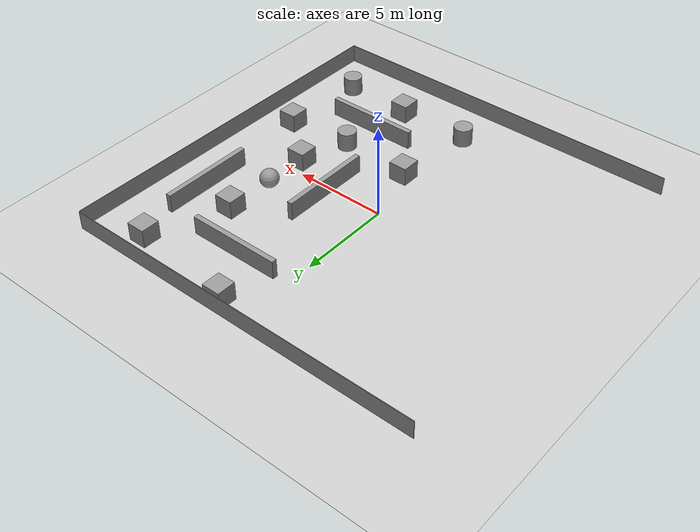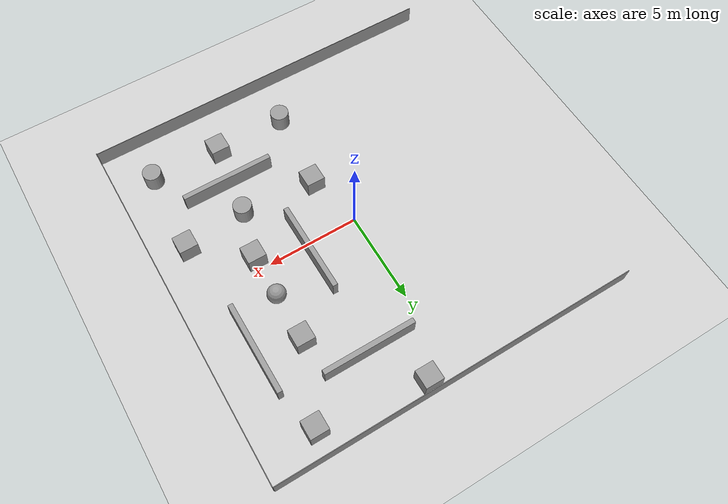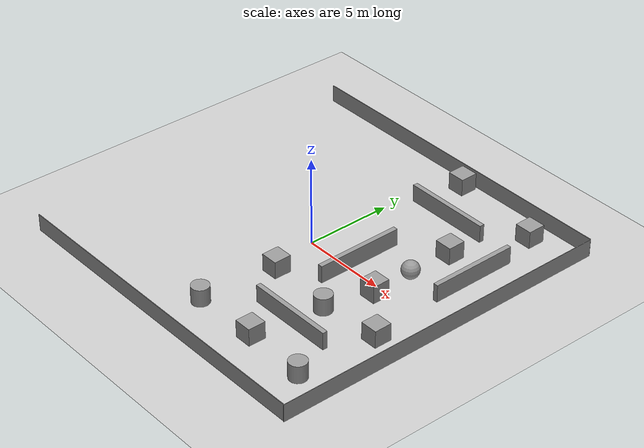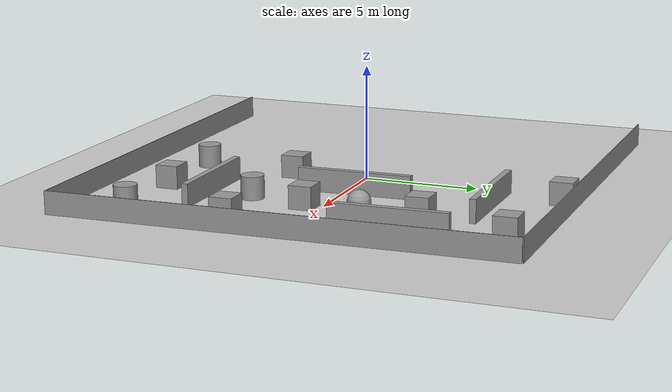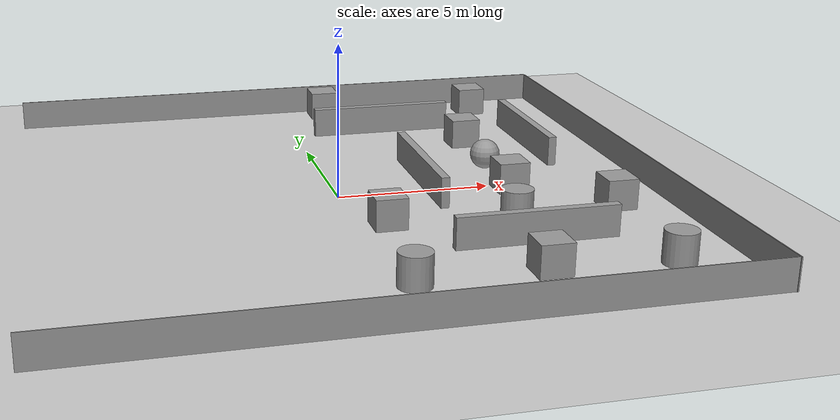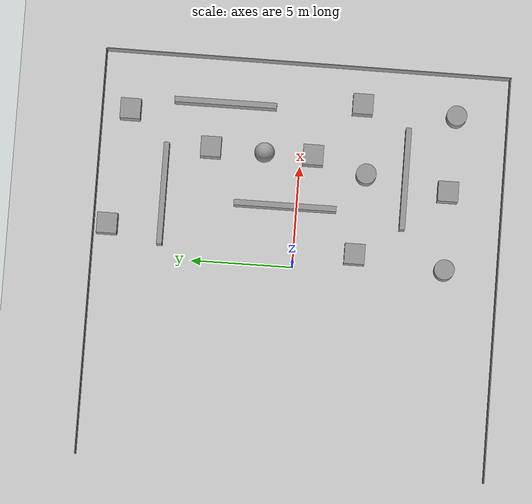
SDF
<sdf version="1.7">
 <world name="default">
  <model name="ground_plane">
   <static>1</static>
   <link name="link">
    <collision name="collision">
     <geometry><plane><normal>0 0 1</normal><size>100 100</size></plane></geometry>
     <surface>
      <contact><collide_bitmask>65535</collide_bitmask></contact>
      <friction><ode><mu>100</mu><mu2>50</mu2></ode></friction>
     </surface>
    </collision>
    <visual name="visual">
     <cast_shadows>0</cast_shadows>
     <geometry><plane><normal>0 0 1</normal><size>100 100</size></plane></geometry>
     <material>
      <script><uri>file://media/materials/scripts/gazebo.material</uri><name>Gazebo/Grey</name></script>
     </material>
    </visual>
   </link>
  </model>
  <model name="m">
   <link name="link_0">
    <inertial>
     <mass>0.665554</mass>
     <inertia><ixx>0.0555244</ixx><ixy>0</ixy><ixz>0</ixz><iyy>22.0844</iyy><iyz>0</iyz><izz>22.029</izz></inertia>
    </inertial>
    <pose>0.242404 -11.0845 -0 0 -0 0</pose>
    <visual name="visual">
     <geometry><box><size>19.9295 0.033323 1</size></box></geometry>
     <material>
      <lighting>1</lighting>
      <script><uri>file://media/materials/scripts/gazebo.material</uri><name>Gazebo/Grey</name></script>
      <shader type="pixel"><normal_map>__default__</normal_map></shader>
     </material>
    </visual>
    <collision name="collision">
     <geometry><box><size>19.9295 0.033323 1</size></box></geometry>
     <surface>
      <friction>
       <ode><mu>1</mu><mu2>1</mu2><fdir1>0 0 0</fdir1><slip1>0</slip1><slip2>0</slip2></ode>
       <torsional>
        <coefficient>1</coefficient>
        <patch_radius>0</patch_radius>
        <surface_radius>0</surface_radius>
        <use_patch_radius>1</use_patch_radius>
        <ode><slip>0</slip></ode>
       </torsional>
      </friction>
      <bounce><restitution_coefficient>0</restitution_coefficient><threshold>1e+06</threshold></bounce>
      <contact>
       <collide_without_contact>0</collide_without_contact>
       <collide_without_contact_bitmask>1</collide_without_contact_bitmask>
       <collide_bitmask>1</collide_bitmask>
       <ode>
        <soft_cfm>0</soft_cfm>
        <soft_erp>0.2</soft_erp>
        <kp>1e+13</kp>
        <kd>1</kd>
        <max_vel>0.01</max_vel>
        <min_depth>0</min_depth>
       </ode>
       <bullet>
        <split_impulse>1</split_impulse>
        <split_impulse_penetration_threshold>-0.01</split_impulse_penetration_threshold>
        <soft_cfm>0</soft_cfm>
        <soft_erp>0.2</soft_erp>
        <kp>1e+13</kp>
        <kd>1</kd>
       </bullet>
      </contact>
     </surface>
    </collision>
   </link>
   <link name="link_0_0">
    <inertial>
     <mass>1</mass>
     <inertia><ixx>0.145833</ixx><ixy>0</ixy><ixz>0</ixz><iyy>0.145833</iyy><iyz>0</iyz><izz>0.125</izz></inertia>
    </inertial>
    <pose>4.95633 -4.33293 -0.032513 -0.004806 1e-06 0</pose>
    <visual name="visual">
     <geometry><cylinder><radius>0.5</radius><length>1</length></cylinder></geometry>
     <material>
      <lighting>1</lighting>
      <script><uri>file://media/materials/scripts/gazebo.material</uri><name>Gazebo/Grey</name></script>
      <shader type="pixel"/>
     </material>
    </visual>
    <collision name="collision">
     <geometry><cylinder><radius>0.5</radius><length>1</length></cylinder></geometry>
     <surface>
      <friction>
       <ode><mu>1</mu><mu2>1</mu2><fdir1>0 0 0</fdir1><slip1>0</slip1><slip2>0</slip2></ode>
       <torsional>
        <coefficient>1</coefficient>
        <patch_radius>0</patch_radius>
        <surface_radius>0</surface_radius>
        <use_patch_radius>1</use_patch_radius>
        <ode><slip>0</slip></ode>
       </torsional>
      </friction>
      <bounce><restitution_coefficient>0</restitution_coefficient><threshold>1e+06</threshold></bounce>
      <contact>
       <collide_without_contact>0</collide_without_contact>
       <collide_without_contact_bitmask>1</collide_without_contact_bitmask>
       <collide_bitmask>1</collide_bitmask>
       <ode>
        <soft_cfm>0</soft_cfm>
        <soft_erp>0.2</soft_erp>
        <kp>1e+13</kp>
        <kd>1</kd>
        <max_vel>0.01</max_vel>
        <min_depth>0</min_depth>
       </ode>
       <bullet>
        <split_impulse>1</split_impulse>
        <split_impulse_penetration_threshold>-0.01</split_impulse_penetration_threshold>
        <soft_cfm>0</soft_cfm>
        <soft_erp>0.2</soft_erp>
        <kp>1e+13</kp>
        <kd>1</kd>
       </bullet>
      </contact>
     </surface>
    </collision>
   </link>
   <link name="link_0_clone">
    <inertial>
     <mass>0.665554</mass>
     <inertia><ixx>0.0555244</ixx><ixy>0</ixy><ixz>0</ixz><iyy>22.0844</iyy><iyz>0</iyz><izz>22.029</izz></inertia>
    </inertial>
    <pose>0.261289 8.83473 0 0 -0 0</pose>
    <visual name="visual">
     <geometry><box><size>19.9295 0.033323 1</size></box></geometry>
     <material>
      <lighting>1</lighting>
      <script><uri>file://media/materials/scripts/gazebo.material</uri><name>Gazebo/Grey</name></script>
      <shader type="pixel"><normal_map>__default__</normal_map></shader>
     </material>
    </visual>
    <collision name="collision">
     <geometry><box><size>19.9295 0.033323 1</size></box></geometry>
     <surface>
      <friction>
       <ode><mu>1</mu><mu2>1</mu2><fdir1>0 0 0</fdir1><slip1>0</slip1><slip2>0</slip2></ode>
       <torsional>
        <coefficient>1</coefficient>
        <patch_radius>0</patch_radius>
        <surface_radius>0</surface_radius>
        <use_patch_radius>1</use_patch_radius>
        <ode><slip>0</slip></ode>
       </torsional>
      </friction>
      <bounce><restitution_coefficient>0</restitution_coefficient><threshold>1e+06</threshold></bounce>
      <contact>
       <collide_without_contact>0</collide_without_contact>
       <collide_without_contact_bitmask>1</collide_without_contact_bitmask>
       <collide_bitmask>1</collide_bitmask>
       <ode>
        <soft_cfm>0</soft_cfm>
        <soft_erp>0.2</soft_erp>
        <kp>1e+13</kp>
        <kd>1</kd>
        <max_vel>0.01</max_vel>
        <min_depth>0</min_depth>
       </ode>
       <bullet>
        <split_impulse>1</split_impulse>
        <split_impulse_penetration_threshold>-0.01</split_impulse_penetration_threshold>
        <soft_cfm>0</soft_cfm>
        <soft_erp>0.2</soft_erp>
        <kp>1e+13</kp>
        <kd>1</kd>
       </bullet>
      </contact>
     </surface>
    </collision>
   </link>
   <link name="link_0_clone_0">
    <inertial>
     <mass>0.665554</mass>
     <inertia><ixx>0.0555244</ixx><ixy>0</ixy><ixz>0</ixz><iyy>22.0844</iyy><iyz>0</iyz><izz>22.029</izz></inertia>
    </inertial>
    <pose>10.2239 -1.16779 0 0 -0 -1.57281</pose>
    <visual name="visual">
     <geometry><box><size>19.9295 0.033323 1</size></box></geometry>
     <material>
      <lighting>1</lighting>
      <script><uri>file://media/materials/scripts/gazebo.material</uri><name>Gazebo/Grey</name></script>
      <shader type="pixel"><normal_map>__default__</normal_map></shader>
     </material>
    </visual>
    <collision name="collision">
     <geometry><box><size>19.9295 0.033323 1</size></box></geometry>
     <surface>
      <friction>
       <ode><mu>1</mu><mu2>1</mu2><fdir1>0 0 0</fdir1><slip1>0</slip1><slip2>0</slip2></ode>
       <torsional>
        <coefficient>1</coefficient>
        <patch_radius>0</patch_radius>
        <surface_radius>0</surface_radius>
        <use_patch_radius>1</use_patch_radius>
        <ode><slip>0</slip></ode>
       </torsional>
      </friction>
      <bounce><restitution_coefficient>0</restitution_coefficient><threshold>1e+06</threshold></bounce>
      <contact>
       <collide_without_contact>0</collide_without_contact>
       <collide_without_contact_bitmask>1</collide_without_contact_bitmask>
       <collide_bitmask>1</collide_bitmask>
       <ode>
        <soft_cfm>0</soft_cfm>
        <soft_erp>0.2</soft_erp>
        <kp>1e+13</kp>
        <kd>1</kd>
        <max_vel>0.01</max_vel>
        <min_depth>0</min_depth>
       </ode>
       <bullet>
        <split_impulse>1</split_impulse>
        <split_impulse_penetration_threshold>-0.01</split_impulse_penetration_threshold>
        <soft_cfm>0</soft_cfm>
        <soft_erp>0.2</soft_erp>
        <kp>1e+13</kp>
        <kd>1</kd>
       </bullet>
      </contact>
     </surface>
    </collision>
   </link>
   <link name="link_1">
    <inertial>
     <mass>1.36399</mass>
     <inertia><ixx>0.122135</ixx><ixy>0</ixy><ixz>0</ixz><iyy>2.98899</iyy><iyz>0</iyz><izz>2.88379</izz></inertia>
    </inertial>
    <pose>3.29192 5.53358 0 0 -0 0</pose>
    <visual name="visual">
     <geometry><box><size>5.02953 0.272957 1</size></box></geometry>
     <material>
      <lighting>1</lighting>
      <script><uri>file://media/materials/scripts/gazebo.material</uri><name>Gazebo/Grey</name></script>
      <shader type="pixel"/>
     </material>
    </visual>
    <collision name="collision">
     <geometry><box><size>5.02953 0.272957 1</size></box></geometry>
     <surface>
      <friction>
       <ode><mu>1</mu><mu2>1</mu2><fdir1>0 0 0</fdir1><slip1>0</slip1><slip2>0</slip2></ode>
       <torsional>
        <coefficient>1</coefficient>
        <patch_radius>0</patch_radius>
        <surface_radius>0</surface_radius>
        <use_patch_radius>1</use_patch_radius>
        <ode><slip>0</slip></ode>
       </torsional>
      </friction>
      <bounce><restitution_coefficient>0</restitution_coefficient><threshold>1e+06</threshold></bounce>
      <contact>
       <collide_without_contact>0</collide_without_contact>
       <collide_without_contact_bitmask>1</collide_without_contact_bitmask>
       <collide_bitmask>1</collide_bitmask>
       <ode>
        <soft_cfm>0</soft_cfm>
        <soft_erp>0.2</soft_erp>
        <kp>1e+13</kp>
        <kd>1</kd>
        <max_vel>0.01</max_vel>
        <min_depth>0</min_depth>
       </ode>
       <bullet>
        <split_impulse>1</split_impulse>
        <split_impulse_penetration_threshold>-0.01</split_impulse_penetration_threshold>
        <soft_cfm>0</soft_cfm>
        <soft_erp>0.2</soft_erp>
        <kp>1e+13</kp>
        <kd>1</kd>
       </bullet>
      </contact>
     </surface>
    </collision>
   </link>
   <link name="link_10">
    <inertial>
     <mass>1</mass>
     <inertia>
      <ixx>0.166667</ixx>
      <ixy>0</ixy>
      <ixz>0</ixz>
      <iyy>0.166667</iyy>
      <iyz>0</iyz>
      <izz>0.166667</izz>
     </inertia>
    </inertial>
    <pose>8.39276 -3.93798 0 0 -0 0</pose>
    <visual name="visual">
     <geometry><box><size>1 1 1</size></box></geometry>
     <material>
      <lighting>1</lighting>
      <script><uri>file://media/materials/scripts/gazebo.material</uri><name>Gazebo/Grey</name></script>
      <shader type="pixel"/>
     </material>
    </visual>
    <collision name="collision">
     <geometry><box><size>1 1 1</size></box></geometry>
     <surface>
      <friction>
       <ode><mu>1</mu><mu2>1</mu2><fdir1>0 0 0</fdir1><slip1>0</slip1><slip2>0</slip2></ode>
       <torsional>
        <coefficient>1</coefficient>
        <patch_radius>0</patch_radius>
        <surface_radius>0</surface_radius>
        <use_patch_radius>1</use_patch_radius>
        <ode><slip>0</slip></ode>
       </torsional>
      </friction>
      <bounce><restitution_coefficient>0</restitution_coefficient><threshold>1e+06</threshold></bounce>
      <contact>
       <collide_without_contact>0</collide_without_contact>
       <collide_without_contact_bitmask>1</collide_without_contact_bitmask>
       <collide_bitmask>1</collide_bitmask>
       <ode>
        <soft_cfm>0</soft_cfm>
        <soft_erp>0.2</soft_erp>
        <kp>1e+13</kp>
        <kd>1</kd>
        <max_vel>0.01</max_vel>
        <min_depth>0</min_depth>
       </ode>
       <bullet>
        <split_impulse>1</split_impulse>
        <split_impulse_penetration_threshold>-0.01</split_impulse_penetration_threshold>
        <soft_cfm>0</soft_cfm>
        <soft_erp>0.2</soft_erp>
        <kp>1e+13</kp>
        <kd>1</kd>
       </bullet>
      </contact>
     </surface>
    </collision>
   </link>
   <link name="link_11">
    <inertial>
     <mass>1</mass>
     <inertia>
      <ixx>0.166667</ixx>
      <ixy>0</ixy>
      <ixz>0</ixz>
      <iyy>0.166667</iyy>
      <iyz>0</iyz>
      <izz>0.166667</izz>
     </inertia>
    </inertial>
    <pose>4.38557 -8.39759 0 0 -0 0</pose>
    <visual name="visual">
     <geometry><box><size>1 1 1</size></box></geometry>
     <material>
      <lighting>1</lighting>
      <script><uri>file://media/materials/scripts/gazebo.material</uri><name>Gazebo/Grey</name></script>
      <shader type="pixel"/>
     </material>
    </visual>
    <collision name="collision">
     <geometry><box><size>1 1 1</size></box></geometry>
     <surface>
      <friction>
       <ode><mu>1</mu><mu2>1</mu2><fdir1>0 0 0</fdir1><slip1>0</slip1><slip2>0</slip2></ode>
       <torsional>
        <coefficient>1</coefficient>
        <patch_radius>0</patch_radius>
        <surface_radius>0</surface_radius>
        <use_patch_radius>1</use_patch_radius>
        <ode><slip>0</slip></ode>
       </torsional>
      </friction>
      <bounce><restitution_coefficient>0</restitution_coefficient><threshold>1e+06</threshold></bounce>
      <contact>
       <collide_without_contact>0</collide_without_contact>
       <collide_without_contact_bitmask>1</collide_without_contact_bitmask>
       <collide_bitmask>1</collide_bitmask>
       <ode>
        <soft_cfm>0</soft_cfm>
        <soft_erp>0.2</soft_erp>
        <kp>1e+13</kp>
        <kd>1</kd>
        <max_vel>0.01</max_vel>
        <min_depth>0</min_depth>
       </ode>
       <bullet>
        <split_impulse>1</split_impulse>
        <split_impulse_penetration_threshold>-0.01</split_impulse_penetration_threshold>
        <soft_cfm>0</soft_cfm>
        <soft_erp>0.2</soft_erp>
        <kp>1e+13</kp>
        <kd>1</kd>
       </bullet>
      </contact>
     </surface>
    </collision>
   </link>
   <link name="link_12">
    <inertial>
     <mass>1</mass>
     <inertia>
      <ixx>0.166667</ixx>
      <ixy>0</ixy>
      <ixz>0</ixz>
      <iyy>0.166667</iyy>
      <iyz>0</iyz>
      <izz>0.166667</izz>
     </inertia>
    </inertial>
    <pose>0.990011 -4.03824 0 0 -0 0</pose>
    <visual name="visual">
     <geometry><box><size>1 1 1</size></box></geometry>
     <material>
      <lighting>1</lighting>
      <script><uri>file://media/materials/scripts/gazebo.material</uri><name>Gazebo/Grey</name></script>
      <shader type="pixel"/>
     </material>
    </visual>
    <collision name="collision">
     <geometry><box><size>1 1 1</size></box></geometry>
     <surface>
      <friction>
       <ode><mu>1</mu><mu2>1</mu2><fdir1>0 0 0</fdir1><slip1>0</slip1><slip2>0</slip2></ode>
       <torsional>
        <coefficient>1</coefficient>
        <patch_radius>0</patch_radius>
        <surface_radius>0</surface_radius>
        <use_patch_radius>1</use_patch_radius>
        <ode><slip>0</slip></ode>
       </torsional>
      </friction>
      <bounce><restitution_coefficient>0</restitution_coefficient><threshold>1e+06</threshold></bounce>
      <contact>
       <collide_without_contact>0</collide_without_contact>
       <collide_without_contact_bitmask>1</collide_without_contact_bitmask>
       <collide_bitmask>1</collide_bitmask>
       <ode>
        <soft_cfm>0</soft_cfm>
        <soft_erp>0.2</soft_erp>
        <kp>1e+13</kp>
        <kd>1</kd>
        <max_vel>0.01</max_vel>
        <min_depth>0</min_depth>
       </ode>
       <bullet>
        <split_impulse>1</split_impulse>
        <split_impulse_penetration_threshold>-0.01</split_impulse_penetration_threshold>
        <soft_cfm>0</soft_cfm>
        <soft_erp>0.2</soft_erp>
        <kp>1e+13</kp>
        <kd>1</kd>
       </bullet>
      </contact>
     </surface>
    </collision>
   </link>
   <link name="link_1_0">
    <inertial>
     <mass>1</mass>
     <inertia><ixx>0.145833</ixx><ixy>0</ixy><ixz>0</ixz><iyy>0.145833</iyy><iyz>0</iyz><izz>0.125</izz></inertia>
    </inertial>
    <pose>0.527383 -8.46897 -0.01263 -0.004806 1e-06 0</pose>
    <visual name="visual">
     <geometry><cylinder><radius>0.5</radius><length>1</length></cylinder></geometry>
     <material>
      <lighting>1</lighting>
      <script><uri>file://media/materials/scripts/gazebo.material</uri><name>Gazebo/Grey</name></script>
      <shader type="pixel"/>
     </material>
    </visual>
    <collision name="collision">
     <geometry><cylinder><radius>0.5</radius><length>1</length></cylinder></geometry>
     <surface>
      <friction>
       <ode><mu>1</mu><mu2>1</mu2><fdir1>0 0 0</fdir1><slip1>0</slip1><slip2>0</slip2></ode>
       <torsional>
        <coefficient>1</coefficient>
        <patch_radius>0</patch_radius>
        <surface_radius>0</surface_radius>
        <use_patch_radius>1</use_patch_radius>
        <ode><slip>0</slip></ode>
       </torsional>
      </friction>
      <bounce><restitution_coefficient>0</restitution_coefficient><threshold>1e+06</threshold></bounce>
      <contact>
       <collide_without_contact>0</collide_without_contact>
       <collide_without_contact_bitmask>1</collide_without_contact_bitmask>
       <collide_bitmask>1</collide_bitmask>
       <ode>
        <soft_cfm>0</soft_cfm>
        <soft_erp>0.2</soft_erp>
        <kp>1e+13</kp>
        <kd>1</kd>
        <max_vel>0.01</max_vel>
        <min_depth>0</min_depth>
       </ode>
       <bullet>
        <split_impulse>1</split_impulse>
        <split_impulse_penetration_threshold>-0.01</split_impulse_penetration_threshold>
        <soft_cfm>0</soft_cfm>
        <soft_erp>0.2</soft_erp>
        <kp>1e+13</kp>
        <kd>1</kd>
       </bullet>
      </contact>
     </surface>
    </collision>
   </link>
   <link name="link_1_1">
    <inertial>
     <mass>1</mass>
     <inertia><ixx>0.145833</ixx><ixy>0</ixy><ixz>0</ixz><iyy>0.145833</iyy><iyz>0</iyz><izz>0.125</izz></inertia>
    </inertial>
    <pose>8.14518 -8.57158 -0.02118 -0.00838 0 0</pose>
    <visual name="visual">
     <geometry><cylinder><radius>0.5</radius><length>1</length></cylinder></geometry>
     <material>
      <lighting>1</lighting>
      <script><uri>file://media/materials/scripts/gazebo.material</uri><name>Gazebo/Grey</name></script>
      <shader type="pixel"/>
     </material>
    </visual>
    <collision name="collision">
     <geometry><cylinder><radius>0.5</radius><length>1</length></cylinder></geometry>
     <surface>
      <friction>
       <ode><mu>1</mu><mu2>1</mu2><fdir1>0 0 0</fdir1><slip1>0</slip1><slip2>0</slip2></ode>
       <torsional>
        <coefficient>1</coefficient>
        <patch_radius>0</patch_radius>
        <surface_radius>0</surface_radius>
        <use_patch_radius>1</use_patch_radius>
        <ode><slip>0</slip></ode>
       </torsional>
      </friction>
      <bounce><restitution_coefficient>0</restitution_coefficient><threshold>1e+06</threshold></bounce>
      <contact>
       <collide_without_contact>0</collide_without_contact>
       <collide_without_contact_bitmask>1</collide_without_contact_bitmask>
       <collide_bitmask>1</collide_bitmask>
       <ode>
        <soft_cfm>0</soft_cfm>
        <soft_erp>0.2</soft_erp>
        <kp>1e+13</kp>
        <kd>1</kd>
        <max_vel>0.01</max_vel>
        <min_depth>0</min_depth>
       </ode>
       <bullet>
        <split_impulse>1</split_impulse>
        <split_impulse_penetration_threshold>-0.01</split_impulse_penetration_threshold>
        <soft_cfm>0</soft_cfm>
        <soft_erp>0.2</soft_erp>
        <kp>1e+13</kp>
        <kd>1</kd>
       </bullet>
      </contact>
     </surface>
    </collision>
   </link>
   <link name="link_1_clone_0">
    <inertial>
     <mass>1.36399</mass>
     <inertia><ixx>0.122135</ixx><ixy>0</ixy><ixz>0</ixz><iyy>2.98899</iyy><iyz>0</iyz><izz>2.88379</izz></inertia>
    </inertial>
    <pose>4.85556 -6.26718 0 0 -0 0</pose>
    <visual name="visual">
     <geometry><box><size>5.02953 0.272957 1</size></box></geometry>
     <material>
      <lighting>1</lighting>
      <script><uri>file://media/materials/scripts/gazebo.material</uri><name>Gazebo/Grey</name></script>
      <shader type="pixel"/>
     </material>
    </visual>
    <collision name="collision">
     <geometry><box><size>5.02953 0.272957 1</size></box></geometry>
     <surface>
      <friction>
       <ode><mu>1</mu><mu2>1</mu2><fdir1>0 0 0</fdir1><slip1>0</slip1><slip2>0</slip2></ode>
       <torsional>
        <coefficient>1</coefficient>
        <patch_radius>0</patch_radius>
        <surface_radius>0</surface_radius>
        <use_patch_radius>1</use_patch_radius>
        <ode><slip>0</slip></ode>
       </torsional>
      </friction>
      <bounce><restitution_coefficient>0</restitution_coefficient><threshold>1e+06</threshold></bounce>
      <contact>
       <collide_without_contact>0</collide_without_contact>
       <collide_without_contact_bitmask>1</collide_without_contact_bitmask>
       <collide_bitmask>1</collide_bitmask>
       <ode>
        <soft_cfm>0</soft_cfm>
        <soft_erp>0.2</soft_erp>
        <kp>1e+13</kp>
        <kd>1</kd>
        <max_vel>0.01</max_vel>
        <min_depth>0</min_depth>
       </ode>
       <bullet>
        <split_impulse>1</split_impulse>
        <split_impulse_penetration_threshold>-0.01</split_impulse_penetration_threshold>
        <soft_cfm>0</soft_cfm>
        <soft_erp>0.2</soft_erp>
        <kp>1e+13</kp>
        <kd>1</kd>
       </bullet>
      </contact>
     </surface>
    </collision>
   </link>
   <link name="link_1_clone_0_clone">
    <inertial>
     <mass>1.36399</mass>
     <inertia><ixx>0.122135</ixx><ixy>0</ixy><ixz>0</ixz><iyy>2.98899</iyy><iyz>0</iyz><izz>2.88379</izz></inertia>
    </inertial>
    <pose>3.10842 -0.473938 -0 0 -0 1.57366</pose>
    <visual name="visual">
     <geometry><box><size>5.02953 0.272957 1</size></box></geometry>
     <material>
      <lighting>1</lighting>
      <script><uri>file://media/materials/scripts/gazebo.material</uri><name>Gazebo/Grey</name></script>
      <shader type="pixel"/>
     </material>
    </visual>
    <collision name="collision">
     <geometry><box><size>5.02953 0.272957 1</size></box></geometry>
     <surface>
      <friction>
       <ode><mu>1</mu><mu2>1</mu2><fdir1>0 0 0</fdir1><slip1>0</slip1><slip2>0</slip2></ode>
       <torsional>
        <coefficient>1</coefficient>
        <patch_radius>0</patch_radius>
        <surface_radius>0</surface_radius>
        <use_patch_radius>1</use_patch_radius>
        <ode><slip>0</slip></ode>
       </torsional>
      </friction>
      <bounce><restitution_coefficient>0</restitution_coefficient><threshold>1e+06</threshold></bounce>
      <contact>
       <collide_without_contact>0</collide_without_contact>
       <collide_without_contact_bitmask>1</collide_without_contact_bitmask>
       <collide_bitmask>1</collide_bitmask>
       <ode>
        <soft_cfm>0</soft_cfm>
        <soft_erp>0.2</soft_erp>
        <kp>1e+13</kp>
        <kd>1</kd>
        <max_vel>0.01</max_vel>
        <min_depth>0</min_depth>
       </ode>
       <bullet>
        <split_impulse>1</split_impulse>
        <split_impulse_penetration_threshold>-0.01</split_impulse_penetration_threshold>
        <soft_cfm>0</soft_cfm>
        <soft_erp>0.2</soft_erp>
        <kp>1e+13</kp>
        <kd>1</kd>
       </bullet>
      </contact>
     </surface>
    </collision>
   </link>
   <link name="link_1_clone_0_clone_clone">
    <inertial>
     <mass>1.36399</mass>
     <inertia><ixx>0.122135</ixx><ixy>0</ixy><ixz>0</ixz><iyy>2.98899</iyy><iyz>0</iyz><izz>2.88379</izz></inertia>
    </inertial>
    <pose>7.97342 2.79719 0 0 -0 1.57366</pose>
    <visual name="visual">
     <geometry><box><size>5.02953 0.272957 1</size></box></geometry>
     <material>
      <lighting>1</lighting>
      <script><uri>file://media/materials/scripts/gazebo.material</uri><name>Gazebo/Grey</name></script>
      <shader type="pixel"/>
     </material>
    </visual>
    <collision name="collision">
     <geometry><box><size>5.02953 0.272957 1</size></box></geometry>
     <surface>
      <friction>
       <ode><mu>1</mu><mu2>1</mu2><fdir1>0 0 0</fdir1><slip1>0</slip1><slip2>0</slip2></ode>
       <torsional>
        <coefficient>1</coefficient>
        <patch_radius>0</patch_radius>
        <surface_radius>0</surface_radius>
        <use_patch_radius>1</use_patch_radius>
        <ode><slip>0</slip></ode>
       </torsional>
      </friction>
      <bounce><restitution_coefficient>0</restitution_coefficient><threshold>1e+06</threshold></bounce>
      <contact>
       <collide_without_contact>0</collide_without_contact>
       <collide_without_contact_bitmask>1</collide_without_contact_bitmask>
       <collide_bitmask>1</collide_bitmask>
       <ode>
        <soft_cfm>0</soft_cfm>
        <soft_erp>0.2</soft_erp>
        <kp>1e+13</kp>
        <kd>1</kd>
        <max_vel>0.01</max_vel>
        <min_depth>0</min_depth>
       </ode>
       <bullet>
        <split_impulse>1</split_impulse>
        <split_impulse_penetration_threshold>-0.01</split_impulse_penetration_threshold>
        <soft_cfm>0</soft_cfm>
        <soft_erp>0.2</soft_erp>
        <kp>1e+13</kp>
        <kd>1</kd>
       </bullet>
      </contact>
     </surface>
    </collision>
   </link>
   <link name="link_4_0">
    <inertial>
     <mass>1</mass>
     <inertia><ixx>0.1</ixx><ixy>0</ixy><ixz>0</ixz><iyy>0.1</iyy><iyz>0</iyz><izz>0.1</izz></inertia>
    </inertial>
    <pose>5.70846 0.722794 -0.05681 -0.004806 1e-06 0</pose>
    <visual name="visual">
     <geometry><sphere><radius>0.5</radius></sphere></geometry>
     <material>
      <lighting>1</lighting>
      <script><uri>file://media/materials/scripts/gazebo.material</uri><name>Gazebo/Grey</name></script>
      <shader type="pixel"/>
     </material>
    </visual>
    <collision name="collision">
     <geometry><sphere><radius>0.5</radius></sphere></geometry>
     <surface>
      <friction>
       <ode><mu>1</mu><mu2>1</mu2><fdir1>0 0 0</fdir1><slip1>0</slip1><slip2>0</slip2></ode>
       <torsional>
        <coefficient>1</coefficient>
        <patch_radius>0</patch_radius>
        <surface_radius>0</surface_radius>
        <use_patch_radius>1</use_patch_radius>
        <ode><slip>0</slip></ode>
       </torsional>
      </friction>
      <bounce><restitution_coefficient>0</restitution_coefficient><threshold>1e+06</threshold></bounce>
      <contact>
       <collide_without_contact>0</collide_without_contact>
       <collide_without_contact_bitmask>1</collide_without_contact_bitmask>
       <collide_bitmask>1</collide_bitmask>
       <ode>
        <soft_cfm>0</soft_cfm>
        <soft_erp>0.2</soft_erp>
        <kp>1e+13</kp>
        <kd>1</kd>
        <max_vel>0.01</max_vel>
        <min_depth>0</min_depth>
       </ode>
       <bullet>
        <split_impulse>1</split_impulse>
        <split_impulse_penetration_threshold>-0.01</split_impulse_penetration_threshold>
        <soft_cfm>0</soft_cfm>
        <soft_erp>0.2</soft_erp>
        <kp>1e+13</kp>
        <kd>1</kd>
       </bullet>
      </contact>
     </surface>
    </collision>
   </link>
   <link name="link_6">
    <inertial>
     <mass>1</mass>
     <inertia>
      <ixx>0.166667</ixx>
      <ixy>0</ixy>
      <ixz>0</ixz>
      <iyy>0.166667</iyy>
      <iyz>0</iyz>
      <izz>0.166667</izz>
     </inertia>
    </inertial>
    <pose>1.63179 8.15216 -0.005618 0 -0 0</pose>
    <visual name="visual">
     <geometry><box><size>1 1 1</size></box></geometry>
     <material>
      <lighting>1</lighting>
      <script><uri>file://media/materials/scripts/gazebo.material</uri><name>Gazebo/Grey</name></script>
      <shader type="pixel"/>
     </material>
    </visual>
    <collision name="collision">
     <geometry><box><size>1 1 1</size></box></geometry>
     <surface>
      <friction>
       <ode><mu>1</mu><mu2>1</mu2><fdir1>0 0 0</fdir1><slip1>0</slip1><slip2>0</slip2></ode>
       <torsional>
        <coefficient>1</coefficient>
        <patch_radius>0</patch_radius>
        <surface_radius>0</surface_radius>
        <use_patch_radius>1</use_patch_radius>
        <ode><slip>0</slip></ode>
       </torsional>
      </friction>
      <bounce><restitution_coefficient>0</restitution_coefficient><threshold>1e+06</threshold></bounce>
      <contact>
       <collide_without_contact>0</collide_without_contact>
       <collide_without_contact_bitmask>1</collide_without_contact_bitmask>
       <collide_bitmask>1</collide_bitmask>
       <ode>
        <soft_cfm>0</soft_cfm>
        <soft_erp>0.2</soft_erp>
        <kp>1e+13</kp>
        <kd>1</kd>
        <max_vel>0.01</max_vel>
        <min_depth>0</min_depth>
       </ode>
       <bullet>
        <split_impulse>1</split_impulse>
        <split_impulse_penetration_threshold>-0.01</split_impulse_penetration_threshold>
        <soft_cfm>0</soft_cfm>
        <soft_erp>0.2</soft_erp>
        <kp>1e+13</kp>
        <kd>1</kd>
       </bullet>
      </contact>
     </surface>
    </collision>
   </link>
   <link name="link_7">
    <inertial>
     <mass>1</mass>
     <inertia>
      <ixx>0.166667</ixx>
      <ixy>0</ixy>
      <ixz>0</ixz>
      <iyy>0.166667</iyy>
      <iyz>0</iyz>
      <izz>0.166667</izz>
     </inertia>
    </inertial>
    <pose>7.34381 7.43416 0 0 -0 0</pose>
    <visual name="visual">
     <geometry><box><size>1 1 1</size></box></geometry>
     <material>
      <lighting>1</lighting>
      <script><uri>file://media/materials/scripts/gazebo.material</uri><name>Gazebo/Grey</name></script>
      <shader type="pixel"/>
     </material>
    </visual>
    <collision name="collision">
     <geometry><box><size>1 1 1</size></box></geometry>
     <surface>
      <friction>
       <ode><mu>1</mu><mu2>1</mu2><fdir1>0 0 0</fdir1><slip1>0</slip1><slip2>0</slip2></ode>
       <torsional>
        <coefficient>1</coefficient>
        <patch_radius>0</patch_radius>
        <surface_radius>0</surface_radius>
        <use_patch_radius>1</use_patch_radius>
        <ode><slip>0</slip></ode>
       </torsional>
      </friction>
      <bounce><restitution_coefficient>0</restitution_coefficient><threshold>1e+06</threshold></bounce>
      <contact>
       <collide_without_contact>0</collide_without_contact>
       <collide_without_contact_bitmask>1</collide_without_contact_bitmask>
       <collide_bitmask>1</collide_bitmask>
       <ode>
        <soft_cfm>0</soft_cfm>
        <soft_erp>0.2</soft_erp>
        <kp>1e+13</kp>
        <kd>1</kd>
        <max_vel>0.01</max_vel>
        <min_depth>0</min_depth>
       </ode>
       <bullet>
        <split_impulse>1</split_impulse>
        <split_impulse_penetration_threshold>-0.01</split_impulse_penetration_threshold>
        <soft_cfm>0</soft_cfm>
        <soft_erp>0.2</soft_erp>
        <kp>1e+13</kp>
        <kd>1</kd>
       </bullet>
      </contact>
     </surface>
    </collision>
   </link>
   <link name="link_8">
    <inertial>
     <mass>1</mass>
     <inertia>
      <ixx>0.166667</ixx>
      <ixy>0</ixy>
      <ixz>0</ixz>
      <iyy>0.166667</iyy>
      <iyz>0</iyz>
      <izz>0.166667</izz>
     </inertia>
    </inertial>
    <pose>5.74929 3.3638 0 0 -0 0</pose>
    <visual name="visual">
     <geometry><box><size>1 1 1</size></box></geometry>
     <material>
      <lighting>1</lighting>
      <script><uri>file://media/materials/scripts/gazebo.material</uri><name>Gazebo/Grey</name></script>
      <shader type="pixel"/>
     </material>
    </visual>
    <collision name="collision">
     <geometry><box><size>1 1 1</size></box></geometry>
     <surface>
      <friction>
       <ode><mu>1</mu><mu2>1</mu2><fdir1>0 0 0</fdir1><slip1>0</slip1><slip2>0</slip2></ode>
       <torsional>
        <coefficient>1</coefficient>
        <patch_radius>0</patch_radius>
        <surface_radius>0</surface_radius>
        <use_patch_radius>1</use_patch_radius>
        <ode><slip>0</slip></ode>
       </torsional>
      </friction>
      <bounce><restitution_coefficient>0</restitution_coefficient><threshold>1e+06</threshold></bounce>
      <contact>
       <collide_without_contact>0</collide_without_contact>
       <collide_without_contact_bitmask>1</collide_without_contact_bitmask>
       <collide_bitmask>1</collide_bitmask>
       <ode>
        <soft_cfm>0</soft_cfm>
        <soft_erp>0.2</soft_erp>
        <kp>1e+13</kp>
        <kd>1</kd>
        <max_vel>0.01</max_vel>
        <min_depth>0</min_depth>
       </ode>
       <bullet>
        <split_impulse>1</split_impulse>
        <split_impulse_penetration_threshold>-0.01</split_impulse_penetration_threshold>
        <soft_cfm>0</soft_cfm>
        <soft_erp>0.2</soft_erp>
        <kp>1e+13</kp>
        <kd>1</kd>
       </bullet>
      </contact>
     </surface>
    </collision>
   </link>
   <link name="link_9">
    <inertial>
     <mass>1</mass>
     <inertia>
      <ixx>0.166667</ixx>
      <ixy>0</ixy>
      <ixz>0</ixz>
      <iyy>0.166667</iyy>
      <iyz>0</iyz>
      <izz>0.166667</izz>
     </inertia>
    </inertial>
    <pose>5.7072 -1.67259 0 0 -0 0</pose>
    <visual name="visual">
     <geometry><box><size>1 1 1</size></box></geometry>
     <material>
      <lighting>1</lighting>
      <script><uri>file://media/materials/scripts/gazebo.material</uri><name>Gazebo/Grey</name></script>
      <shader type="pixel"/>
     </material>
    </visual>
    <collision name="collision">
     <geometry><box><size>1 1 1</size></box></geometry>
     <surface>
      <friction>
       <ode><mu>1</mu><mu2>1</mu2><fdir1>0 0 0</fdir1><slip1>0</slip1><slip2>0</slip2></ode>
       <torsional>
        <coefficient>1</coefficient>
        <patch_radius>0</patch_radius>
        <surface_radius>0</surface_radius>
        <use_patch_radius>1</use_patch_radius>
        <ode><slip>0</slip></ode>
       </torsional>
      </friction>
      <bounce><restitution_coefficient>0</restitution_coefficient><threshold>1e+06</threshold></bounce>
      <contact>
       <collide_without_contact>0</collide_without_contact>
       <collide_without_contact_bitmask>1</collide_without_contact_bitmask>
       <collide_bitmask>1</collide_bitmask>
       <ode>
        <soft_cfm>0</soft_cfm>
        <soft_erp>0.2</soft_erp>
        <kp>1e+13</kp>
        <kd>1</kd>
        <max_vel>0.01</max_vel>
        <min_depth>0</min_depth>
       </ode>
       <bullet>
        <split_impulse>1</split_impulse>
        <split_impulse_penetration_threshold>-0.01</split_impulse_penetration_threshold>
        <soft_cfm>0</soft_cfm>
        <soft_erp>0.2</soft_erp>
        <kp>1e+13</kp>
        <kd>1</kd>
       </bullet>
      </contact>
     </surface>
    </collision>
   </link>
   <static>0</static>
   <pose>-0.158128 1.05576 0.593005 0.00838 -0 0</pose>
  </model>
 </world>
</sdf>
